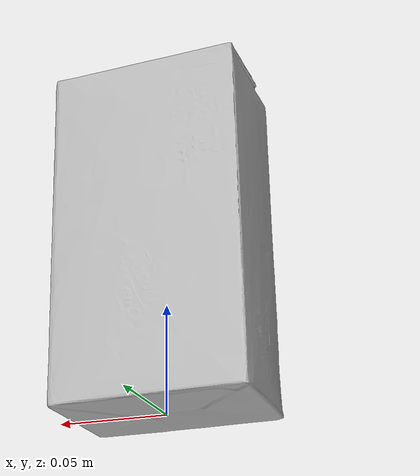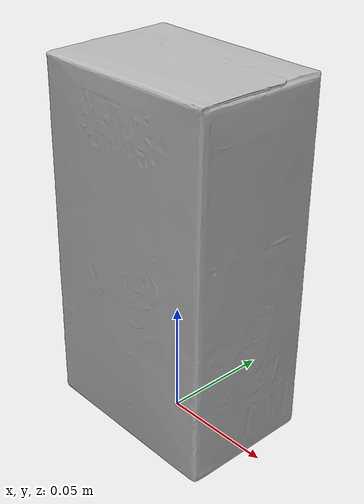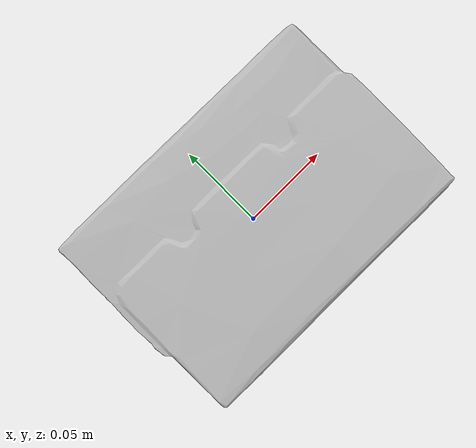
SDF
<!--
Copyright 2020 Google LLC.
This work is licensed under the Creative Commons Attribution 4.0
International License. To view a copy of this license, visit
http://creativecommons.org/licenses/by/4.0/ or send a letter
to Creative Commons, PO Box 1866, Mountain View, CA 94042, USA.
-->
<?xml version="1.0" ?>
<sdf version="1.6">
  <model name="Nescafe_Memento_Latte_Caramel_8_08_oz_23_g_packets_64_oz_184_g">
    <link name="link_0">
      <visual name="visual">
        <geometry>
          <mesh>
            <uri>meshes/model.obj</uri>
          </mesh>
        </geometry>
      </visual>
      <collision name="collision_0">
        <geometry>
          <mesh>
            <uri>meshes/model.obj</uri>
          </mesh>
        </geometry>
      </collision>
    </link>
  </model>
</sdf>
